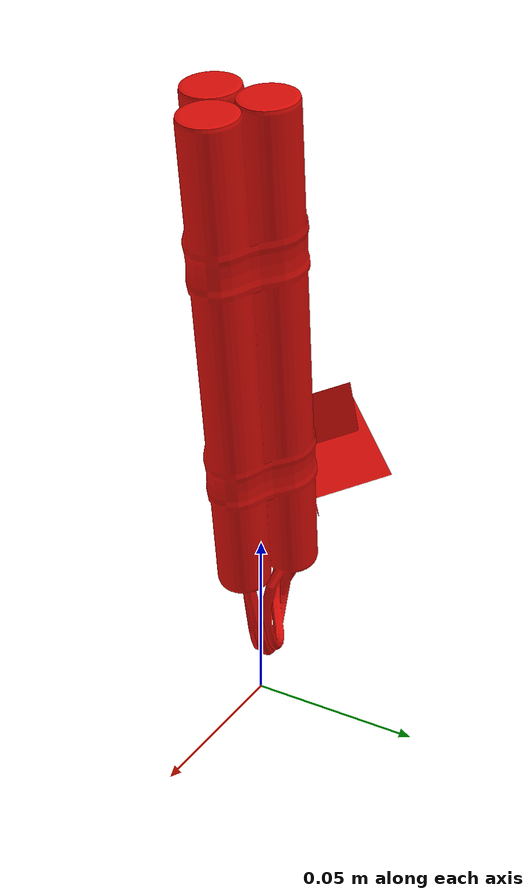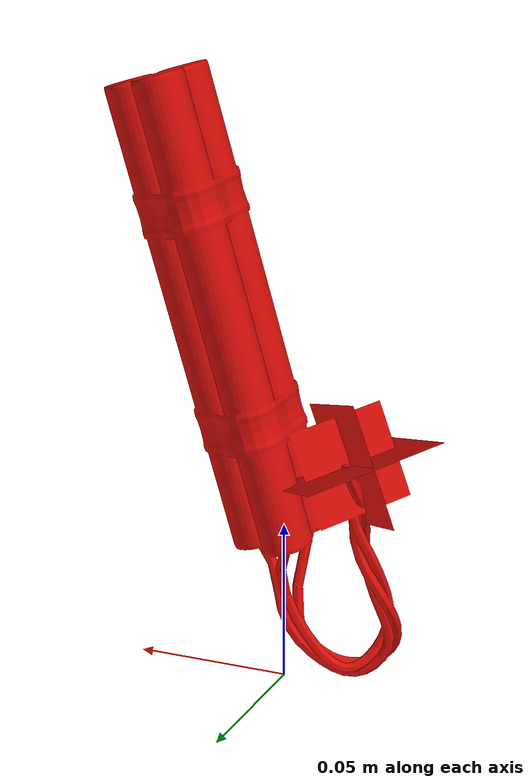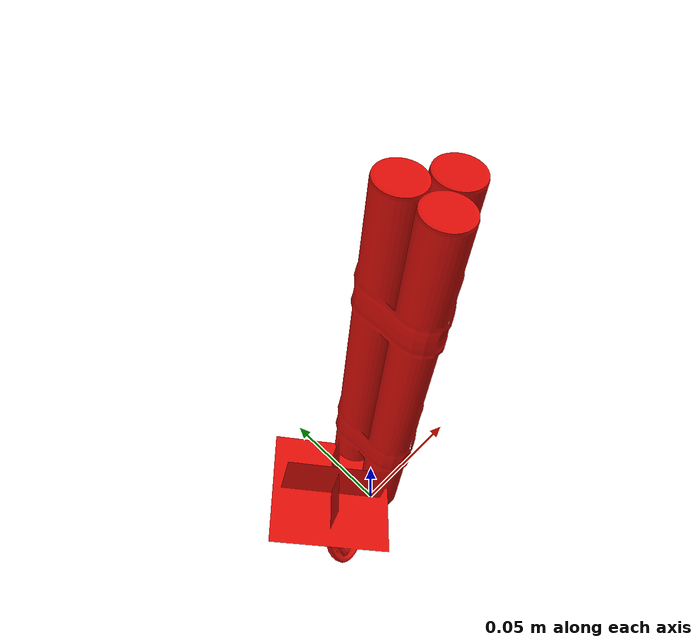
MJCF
<mujoco model="custom_obvious_mesh_dynamite_bundle">
  <asset>
    <mesh name="visual_mesh" file="dynamite_bundle.obj" />
  </asset>
  <worldbody>
    <body>
      <body name="object">
        <geom conaffinity="0" contype="0" group="1" mesh="visual_mesh" rgba="0.86 0.05 0.03 1" type="mesh" />

        <geom
          density="100"
          friction="0.95 0.3 0.1"
          group="0"
          pos="0.0000 0.0000 0.0600"
          rgba="0.8 0.8 0.8 0.0"
          size="0.1050 0.0700 0.0600"
          type="box"
        />
        <geom
          name="reg_bbox"
          conaffinity="0"
          contype="0"
          group="3"
          pos="0.0000 0.0000 0.0600"
          rgba="0 0 0 0"
          size="0.1050 0.0700 0.0600"
          type="box"
        />
      </body>
      <site rgba="0 0 0 0" size="0.005" pos="0 0 0" name="bottom_site" />
      <site rgba="0 0 0 0" size="0.005" pos="0 0 0.1200" name="top_site" />
      <site rgba="0 0 0 0" size="0.005" pos="0.1050 0.1050 0" name="horizontal_radius_site" />
    </body>
  </worldbody>
</mujoco>
